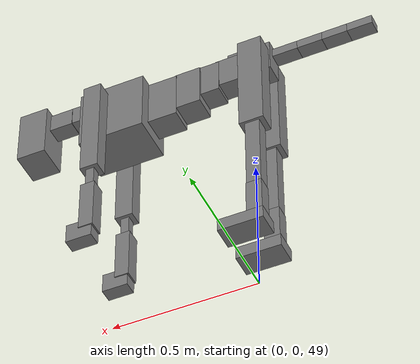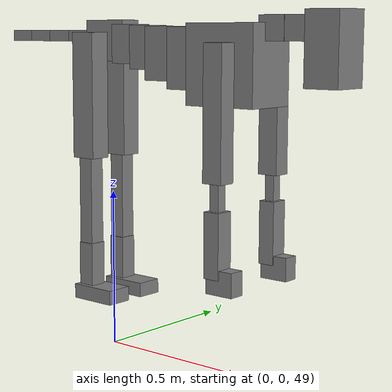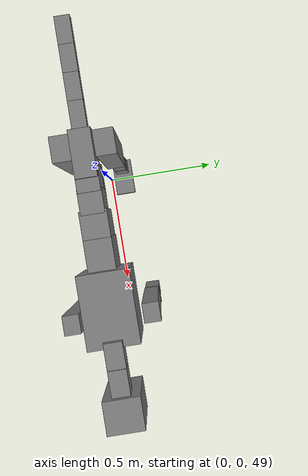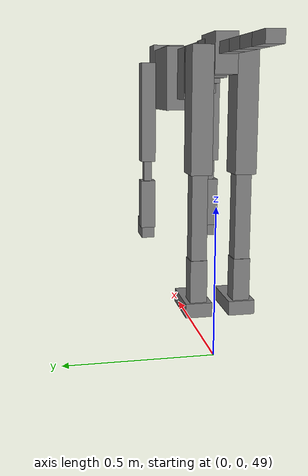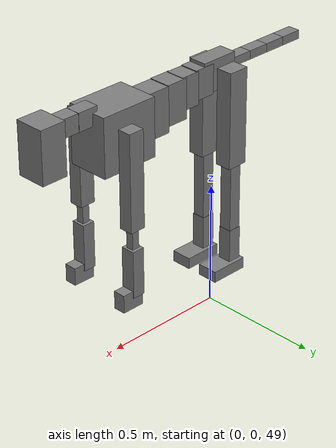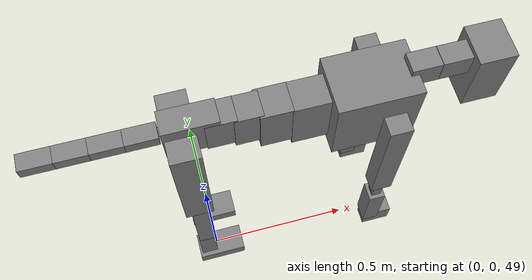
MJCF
<mujoco model="dog">

    <default>
        <joint armature="0.02" stiffness="1" damping="0.2" limited="true"/>
        <geom condim="3" friction="1 0.05 0.05" margin="0.01"/>
        <motor ctrllimited="true" ctrlrange="-1.0 1.0" forcelimited="true" gear="50"/>
    </default>

    <compiler inertiafromgeom="true" angle="radian"/>

    <option timestep="0.016" iterations="50" tolerance="1e-10" solver="Newton" jacobian="dense" cone="pyramidal"/>

    <size nconmax="20000" njmax="60000" nstack="5000000"/>
    <visual>
        <map force="0.1" zfar="30"/>
        <rgba haze="0.15 0.25 0.35 1"/>
        <quality shadowsize="2048"/>
        <global offwidth="800" offheight="800"/>
    </visual>

    <asset>
        <texture type="skybox" builtin="gradient" rgb1="0.3 0.5 0.7" rgb2="0 0 0" width="512" height="512"/>
        <texture name="texplane" type="2d" builtin="checker" rgb1=".2 .3 .4" rgb2=".1 0.15 0.2" width="512" height="512"
                 mark="cross" markrgb=".8 .8 .8"/>
        <texture name="texgeom" type="cube" builtin="flat" mark="cross" width="127" height="1278" rgb1="0.8 0.6 0.4"
                 rgb2="0.8 0.6 0.4" markrgb="1 1 1" random="0.01"/>

        <material name="matplane" reflectance="0.3" texture="texplane" texrepeat="1 1" texuniform="true"/>
        <material name="matgeom" texture="texgeom" texuniform="true" rgba="0.8 0.6 .4 1"/>
    </asset>

    <worldbody>
        <geom name="floor" pos="0 0 0" size="0 0 .25" type="plane" material="matplane" condim="3"/>

        <light directional="false" diffuse=".2 .2 .2" specular="0 0 0" pos="0 0 5" dir="0 0 -1" castshadow="false"/>
        <light mode="targetbodycom" target="torso" directional="false" diffuse=".8 .8 .8" specular="0.3 0.3 0.3"
               pos="0 0 4.0" dir="0 0 -1"/>

        <body name="root" pos="0 0 50">
            <freejoint name="root_1"/>
            <geom type="box" pos="0 0 -0.02" size="0.0774  0.0358  0.063" density="2030"/>

            <body name="spine1" pos="0.054 0 0">
                <joint name="spine1_y" axis="0 1 0" range="0 0.7" limited="true"/>
                <geom type="box" pos="0.02375 0 -0.03" size="0.04375  0.0375  0.05985" density="2030"/>

                <body name="spine2" pos="0.0612 0 0">
                    <joint name="spine2_y" axis="0 1 0" range="-0.15 0.15" limited="true"/>
                    <geom type="box" pos="0.03555  0  -0.04" size="0.04055  0.039  0.06615" density="2030"/>

                    <body name="spine3" pos="0.0730 0 0">
                        <joint name="spine3_y" axis="0 1 0" range="-0.15 0.15" limited="true"/>
                        <geom type="box" pos="0.03555  0  -0.057" size="0.04555  0.0445  0.081" density="2030"/>

                        <body name="spine4" pos="0.0780 0 0">
                            <joint name="spine4_y" axis="0 1 0" range="-0.15 0.15" limited="true"/>
                            <geom type="box" pos="0.05265  0  -0.07" size="0.05265  0.045  0.09135" density="2030"/>

                            <body name="torso" pos="0.1082 0 0">
                                <joint name="torso_y" axis="0 1 0" range="-0.15 0.15" limited="true"/>
                                <geom type="box" pos="0.11925  0  -0.085" size="0.11925  0.085  0.11745"
                                      density="2030"/>

                                <body name="neck1" pos="0.2160  0   0.0180">
                                    <joint name="neck1_y" axis="0 1 0" range="-1.2  -1" limited="true"/>
                                    <geom type="box" pos="0.0423  0  0" size="0.0423  0.03  0.036" density="2325"/>

                                    <body name="neck2" pos="0.0853  0  0">
                                        <joint name="neck2_y" axis="0 1 0" range="0.1  0" limited="true"/>
                                        <geom type="box" pos="0.0423  0  0" size="0.0423  0.03  0.036" density="2325"/>

                                        <body name="head" pos="0.0853  0  0">
                                            <joint name="head_y" axis="0 1 0" range="-0.3  -0.2" limited="true"/>
                                            <geom type="box" pos="0.0531  0  -0.055" size="0.0531  0.06  0.1044"
                                                  density="4030"/>

                                        </body>
                                    </body>
                                </body>

                                <body name="front_shoulder" pos="0.156  0   -0.0480">
                                    <joint name="front_shoulder_y" axis="0 1 0" range="-1 1.5" limited="true"/>
                                    <geom type="box" pos="0 0.13 -0.1672" size="0.0322  0.0275  0.1938" density="1158"/>
                                    <geom type="box" pos="0 -0.13 -0.1672" size="0.0322  0.0275  0.1938"
                                          density="1158"/>

                                    <body name="front_elbow" pos="0  0  -0.3344">
                                        <joint name="front_elbow_y" axis="0 1 0" range="-2 0" limited="true"/>
                                        <geom type="box" pos="0 0.13 -0.0591" size="0.0151  0.0155  0.0591"
                                              density="1081"/>
                                        <geom type="box" pos="0 -0.13 -0.0591" size="0.0151  0.0155  0.0591"
                                              density="1081"/>

                                        <body name="front_wrist" pos="0  0  -0.1181">
                                            <joint name="front_wrist_y" axis="0 1 0" range="-0.2 0" limited="true"/>
                                            <geom type="box" pos="0 0.13 -0.0821" size="0.0255  0.0283  0.0952"
                                                  density="1664"/>
                                            <geom type="box" pos="0 -0.13 -0.0821" size="0.0255  0.0283  0.0952"
                                                  density="1664"/>

                                            <body name="front_finger_end" pos="0  0  -0.1642">
                                                <joint name="front_finger_y" axis="0 1 0" range="-0.4 1"
                                                       limited="true"/>
                                                <geom type="box" pos="0.0248  0.13  -0.0207"
                                                      size="0.0455  0.0248  0.0357" density="1515"/>
                                                <geom type="box" pos="0.0248  -0.13  -0.0207"
                                                      size="0.0455  0.0248  0.0357" density="1515"/>

                                            </body>

                                        </body>
                                    </body>
                                </body>

                            </body>
                        </body>
                    </body>
                </body>
            </body>

            <body name="back_hip" pos="-0.03 0 -0.018">
                <joint name="back_hip_y" axis="0 1 0" range="-1.5 0.3" limited="true"/>
                <geom type="box" pos="0 0.07 -0.1724" size="0.0428  0.0336  0.1952" density="1154"/>
                <geom type="box" pos="0 -0.07 -0.1724" size="0.0428  0.0336  0.1952" density="1154"/>

                <body name="back_knee" pos="0  0  -0.3448">
                    <joint name="back_knee_y" axis="0 1 0" range="0 2.8" limited="true"/>
                    <geom type="box" pos="0 0.07 -0.1530" size="0.0253  0.0249  0.1686" density="1227"/>
                    <geom type="box" pos="0 -0.07 -0.1530" size="0.0253  0.0249  0.1686" density="1227"/>

                    <body name="back_ankle" pos="0  0  -0.3060">
                        <joint name="back_ankle_y" axis="0 1 0" range="-2.2 0" limited="true"/>
                        <geom type="box" pos="0 0.07 -0.0698" size="0.0271  0.0271  0.0810" density="1284"/>
                        <geom type="box" pos="0 -0.07 -0.0698" size="0.0271  0.0271  0.0810" density="1284"/>

                        <body name="back_toe_end" pos="0  0  -0.1396">
                            <joint name="back_toe_y" axis="0 1 0" range="-0.4 1" limited="true"/>
                            <geom type="box" pos="0.0423  0.07  -0.0077" size="0.0776  0.0423  0.0227" density="1515"/>
                            <geom type="box" pos="0.0423  -0.07  -0.0077" size="0.0776  0.0423  0.0227" density="1515"/>

                        </body>
                    </body>
                </body>
            </body>

            <body name="tail1" pos="-0.074 0 -0.006">
                <joint name="tail1_y" axis="0 1 0" range="-0.2 0.2" limited="true"/>
                <geom type="box" pos="-0.0536  0  0" size="0.045  0.025  0.0175" density="1587"/>

                <body name="tail2" pos="-0.09 0 0">
                    <joint name="tail2_y" axis="0 1 0" range="-0.2 0.2" limited="true"/>
                    <geom type="box" pos="-0.0536  0  0" size="0.045  0.025  0.0175" density="1587"/>

                    <body name="tail3" pos="-0.09 0 0">
                        <joint name="tail3_y" axis="0 1 0" range="-0.2 0.2" limited="true"/>
                        <geom type="box" pos="-0.0536  0  0" size="0.045  0.025  0.0175" density="1587"/>

                        <body name="tail4" pos="-0.09 0 0">
                            <joint name="tail4_y" axis="0 1 0" range="-0.2 0.2" limited="true"/>
                            <geom type="box" pos="-0.0536  0  0" size="0.045  0.025  0.0175" density="1587"/>

                        </body>
                    </body>
                </body>
            </body>
        </body>
    </worldbody>

    <actuator>
        <motor joint="spine1_y" forcerange="-150 150     "/>
        <motor joint="spine2_y" forcerange="-150 150     "/>
        <motor joint="spine3_y" forcerange="-150 150     "/>
        <motor joint="spine4_y" forcerange="-150 150     "/>
        <motor joint="torso_y" forcerange="-150 150     "/>
        <motor joint="neck1_y" forcerange="-100 100       "/>
        <motor joint="neck2_y" forcerange="-100 100       "/>
        <motor joint="head_y" forcerange="-150 150       "/>
        <motor joint="front_shoulder_y" forcerange="-117.72 165.93"/>
        <motor joint="front_elbow_y" forcerange="-111.94 100.65"/>
        <motor joint="front_wrist_y" forcerange="-111.72 114.60"/>
        <motor joint="front_finger_y" forcerange="-36.76 55.65"/>
        <motor joint="back_hip_y" forcerange="-294.22 353.28"/>
        <motor joint="back_knee_y" forcerange="-203.51 359.15"/>
        <motor joint="back_angle_y" forcerange="-223.00 110.79"/>
        <motor joint="back_toe_y" forcerange="-123.59 134.98"/>
        <motor joint="tail1_y" forcerange="-50 50     "/>
        <motor joint="tail2_y" forcerange="-50 50     "/>
        <motor joint="tail3_y" forcerange="-50 50     "/>
        <motor joint="tail4_y" forcerange="-50 50     "/>
    </actuator>
</mujoco>
